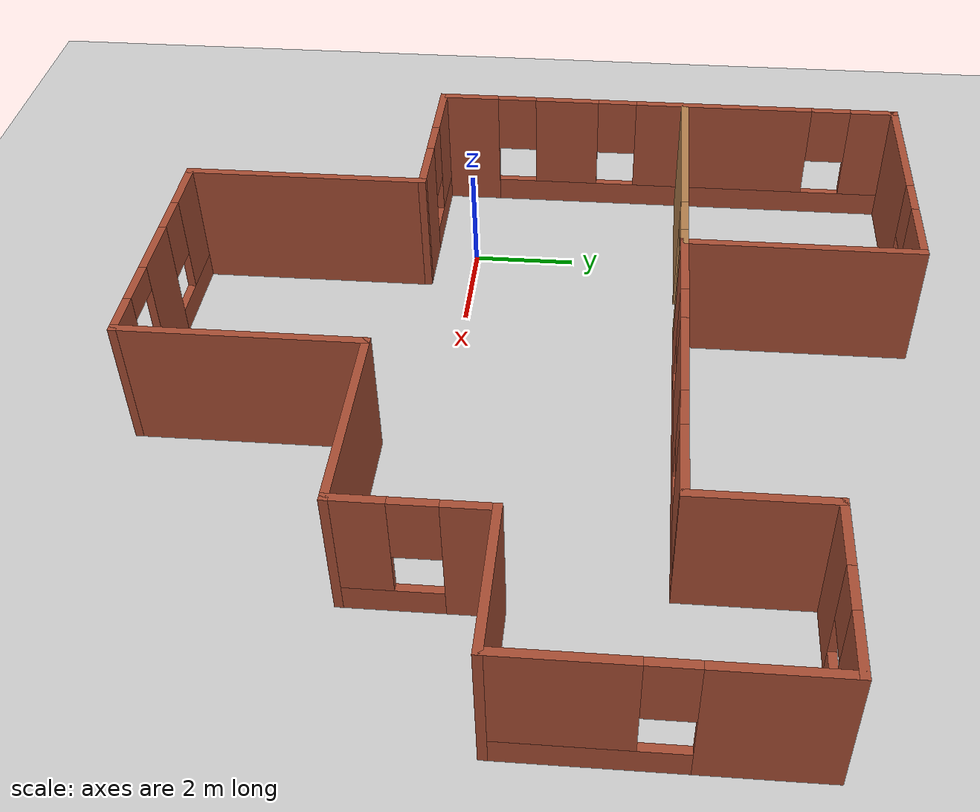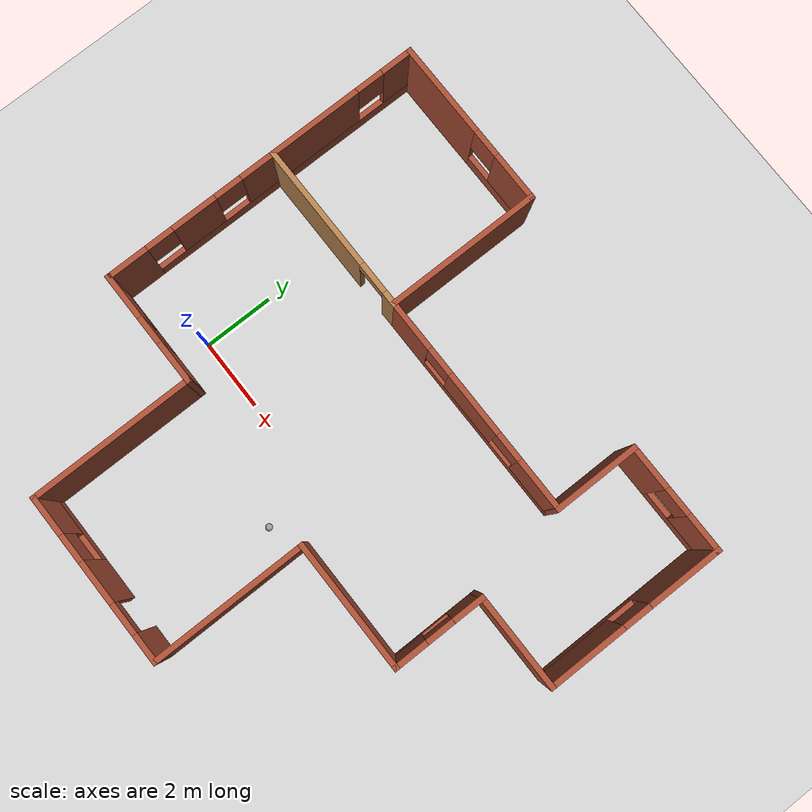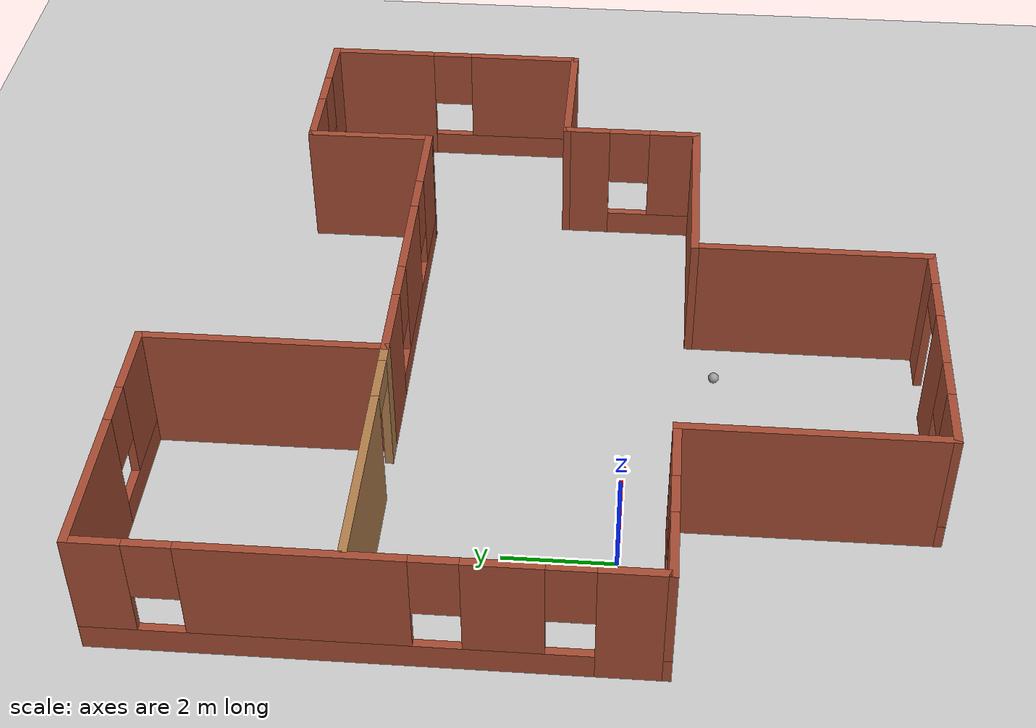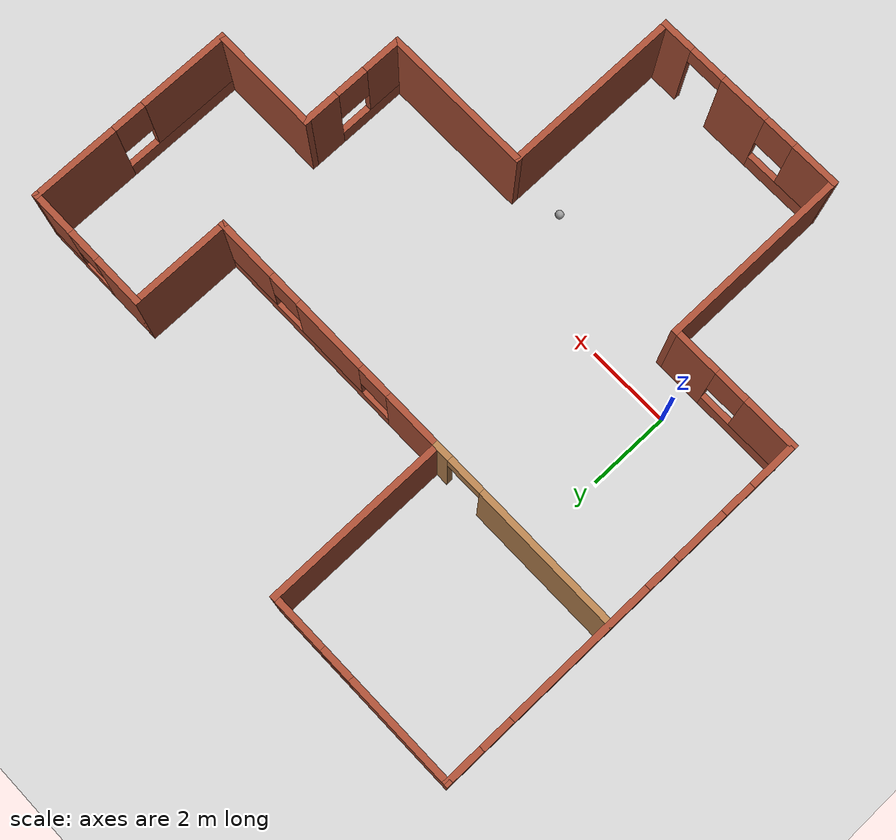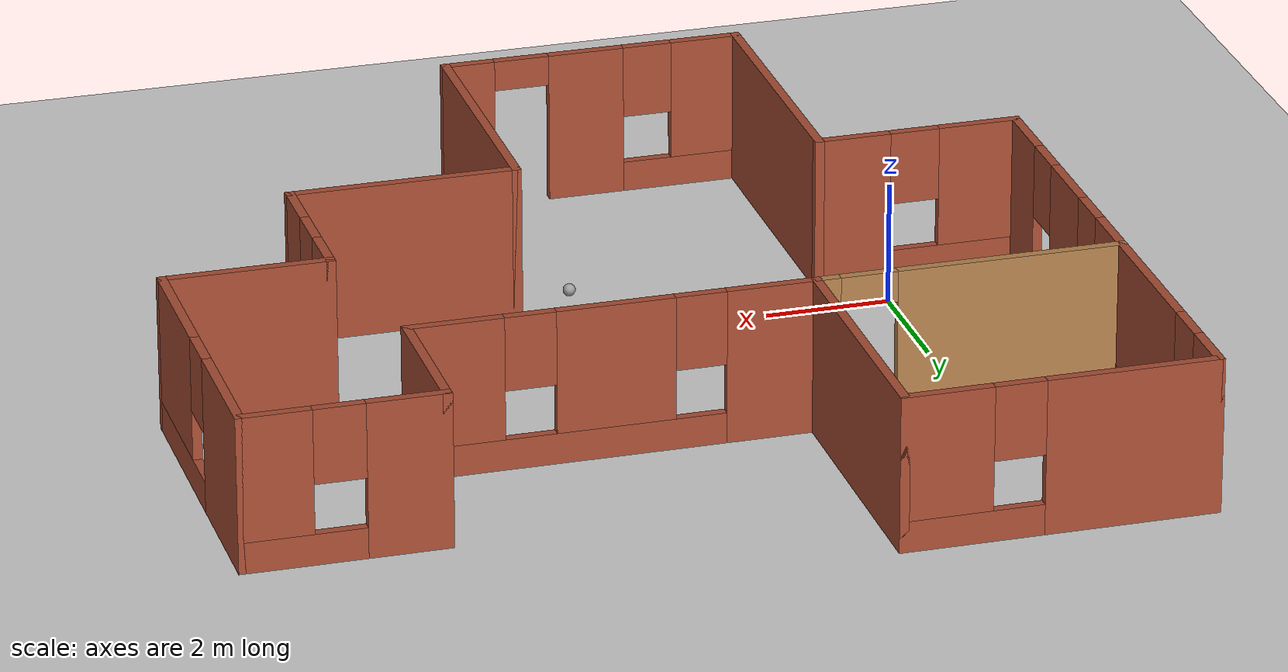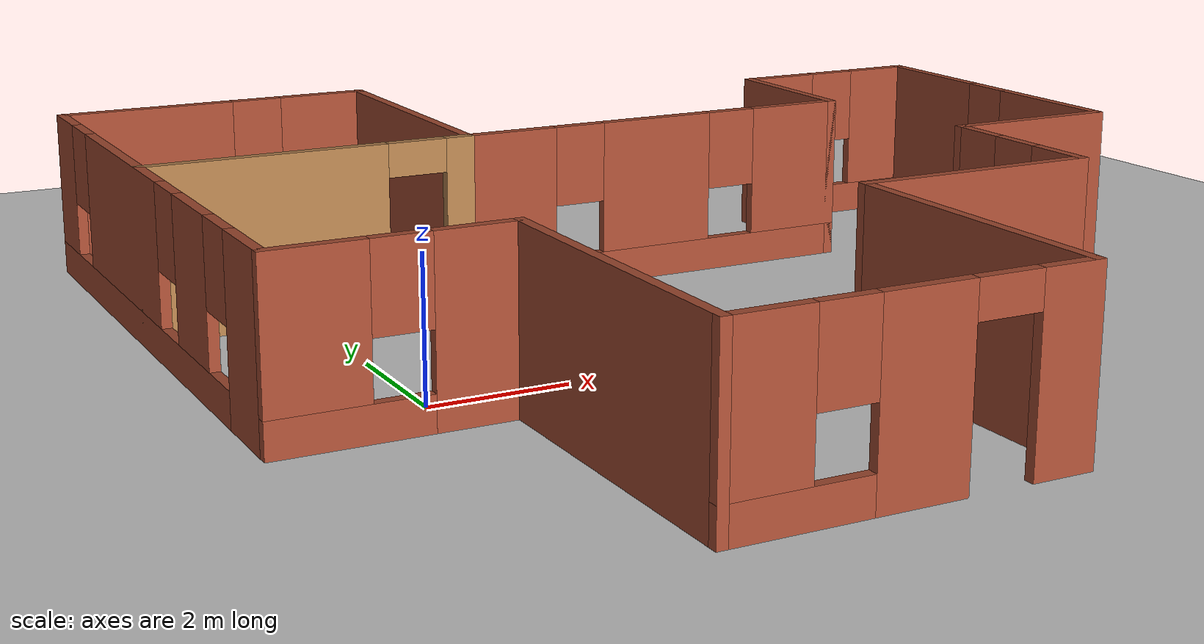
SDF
<sdf version="1.6">
 <world name="default">
  <light name="sun" type="directional">
   <pose>0 0 10 0 -0 0</pose>
   <diffuse>0.8 0.8 0.8 1</diffuse>
   <specular>0.2 0.2 0.2 1</specular>
   <attenuation>
    <range>1000</range>
    <constant>0.9</constant>
    <linear>0.01</linear>
    <quadratic>0.001</quadratic>
   </attenuation>
   <direction>-0.5 0.1 -0.9</direction>
  </light>
  <model name="ground_plane">
   <static>1</static>
   <link name="link">
    <collision name="collision">
     <geometry><plane><normal>0 0 1</normal><size>100 100</size></plane></geometry>
     <surface>
      <contact><collide_bitmask>65535</collide_bitmask></contact>
      <friction><ode><mu>100</mu><mu2>50</mu2></ode></friction>
     </surface>
    </collision>
    <visual name="visual">
     <cast_shadows>0</cast_shadows>
     <geometry><plane><normal>0 0 1</normal><size>100 100</size></plane></geometry>
     <material>
      <script><uri>file://media/materials/scripts/gazebo.material</uri><name>Gazebo/Grey</name></script>
     </material>
    </visual>
   </link>
  </model>
  <gravity>0 0 -9.8</gravity>
  <magnetic_field>6e-06 2.3e-05 -4.2e-05</magnetic_field>
  <atmosphere type="adiabatic"/>
  <physics name="default_physics" default="0" type="ode">
   <max_step_size>0.001</max_step_size>
   <real_time_factor>1</real_time_factor>
   <real_time_update_rate>1000</real_time_update_rate>
  </physics>
  <scene><ambient>0.4 0.4 0.4 1</ambient><background>0.7 0.7 0.7 1</background><shadows>1</shadows></scene>
  <spherical_coordinates>
   <surface_model>EARTH_WGS84</surface_model>
   <latitude_deg>0</latitude_deg>
   <longitude_deg>0</longitude_deg>
   <elevation>0</elevation>
   <heading_deg>0</heading_deg>
  </spherical_coordinates>
  <model name="mybuilding">
   <pose>4.8 1.535 0 0 -0 0</pose>
   <link name="Wall_0">
    <pose>-7.15 2.35 0 0 -0 1.5708</pose>
    <visual name="Wall_0_Visual_0">
     <pose>-4.18163 0 1.25 0 -0 0</pose>
     <geometry><box><size>1.13674 0.15 2.5</size></box></geometry>
     <material>
      <script><uri>file://media/materials/scripts/gazebo.material</uri><name>Gazebo/Bricks</name></script>
      <ambient>1 1 1 1</ambient>
     </material>
     <meta><layer>0</layer></meta>
    </visual>
    <collision name="Wall_0_Collision_0">
     <geometry><box><size>1.13674 0.15 2.5</size></box></geometry>
     <pose>-4.18163 0 1.25 0 -0 0</pose>
    </collision>
    <visual name="Wall_0_Visual_1">
     <pose>0.568369 0 0.25 0 -0 0</pose>
     <geometry><box><size>8.36326 0.15 0.5</size></box></geometry>
     <material>
      <script><uri>file://media/materials/scripts/gazebo.material</uri><name>Gazebo/Bricks</name></script>
      <ambient>1 1 1 1</ambient>
     </material>
     <meta><layer>0</layer></meta>
    </visual>
    <collision name="Wall_0_Collision_1">
     <geometry><box><size>8.36326 0.15 0.5</size></box></geometry>
     <pose>0.568369 0 0.25 0 -0 0</pose>
    </collision>
    <visual name="Wall_0_Visual_2">
     <pose>-2.15262 0 1.5 0 -0 0</pose>
     <geometry><box><size>1.32129 0.15 2</size></box></geometry>
     <material>
      <script><uri>file://media/materials/scripts/gazebo.material</uri><name>Gazebo/Bricks</name></script>
      <ambient>1 1 1 1</ambient>
     </material>
     <meta><layer>0</layer></meta>
    </visual>
    <collision name="Wall_0_Collision_2">
     <geometry><box><size>1.32129 0.15 2</size></box></geometry>
     <pose>-2.15262 0 1.5 0 -0 0</pose>
    </collision>
    <visual name="Wall_0_Visual_3">
     <pose>1.13887 0 1.5 0 -0 0</pose>
     <geometry><box><size>3.66168 0.15 2</size></box></geometry>
     <material>
      <script><uri>file://media/materials/scripts/gazebo.material</uri><name>Gazebo/Bricks</name></script>
      <ambient>1 1 1 1</ambient>
     </material>
     <meta><layer>0</layer></meta>
    </visual>
    <collision name="Wall_0_Collision_3">
     <geometry><box><size>3.66168 0.15 2</size></box></geometry>
     <pose>1.13887 0 1.5 0 -0 0</pose>
    </collision>
    <visual name="Wall_0_Visual_4">
     <pose>4.25985 0 1.5 0 -0 0</pose>
     <geometry><box><size>0.980292 0.15 2</size></box></geometry>
     <material>
      <script><uri>file://media/materials/scripts/gazebo.material</uri><name>Gazebo/Bricks</name></script>
      <ambient>1 1 1 1</ambient>
     </material>
     <meta><layer>0</layer></meta>
    </visual>
    <collision name="Wall_0_Collision_4">
     <geometry><box><size>0.980292 0.15 2</size></box></geometry>
     <pose>4.25985 0 1.5 0 -0 0</pose>
    </collision>
    <visual name="Wall_0_Visual_5">
     <pose>-3.21326 0 1.9 0 -0 0</pose>
     <geometry><box><size>0.8 0.15 1.2</size></box></geometry>
     <material>
      <script><uri>file://media/materials/scripts/gazebo.material</uri><name>Gazebo/Bricks</name></script>
      <ambient>1 1 1 1</ambient>
     </material>
     <meta><layer>0</layer></meta>
    </visual>
    <collision name="Wall_0_Collision_5">
     <geometry><box><size>0.8 0.15 1.2</size></box></geometry>
     <pose>-3.21326 0 1.9 0 -0 0</pose>
    </collision>
    <visual name="Wall_0_Visual_6">
     <pose>-1.09197 0 1.9 0 -0 0</pose>
     <geometry><box><size>0.8 0.15 1.2</size></box></geometry>
     <material>
      <script><uri>file://media/materials/scripts/gazebo.material</uri><name>Gazebo/Bricks</name></script>
      <ambient>1 1 1 1</ambient>
     </material>
     <meta><layer>0</layer></meta>
    </visual>
    <collision name="Wall_0_Collision_6">
     <geometry><box><size>0.8 0.15 1.2</size></box></geometry>
     <pose>-1.09197 0 1.9 0 -0 0</pose>
    </collision>
    <visual name="Wall_0_Visual_7">
     <pose>3.36971 0 1.9 0 -0 0</pose>
     <geometry><box><size>0.8 0.15 1.2</size></box></geometry>
     <material>
      <script><uri>file://media/materials/scripts/gazebo.material</uri><name>Gazebo/Bricks</name></script>
      <ambient>1 1 1 1</ambient>
     </material>
     <meta><layer>0</layer></meta>
    </visual>
    <collision name="Wall_0_Collision_7">
     <geometry><box><size>0.8 0.15 1.2</size></box></geometry>
     <pose>3.36971 0 1.9 0 -0 0</pose>
    </collision>
   </link>
   <link name="Wall_1">
    <pose>-4.725 7.025 0 0 -0 0</pose>
    <visual name="Wall_1_Visual_0">
     <pose>-1.12305 0 1.25 0 -0 0</pose>
     <geometry><box><size>2.7539 0.15 2.5</size></box></geometry>
     <material>
      <script><uri>file://media/materials/scripts/gazebo.material</uri><name>Gazebo/Bricks</name></script>
      <ambient>1 1 1 1</ambient>
     </material>
     <meta><layer>0</layer></meta>
    </visual>
    <collision name="Wall_1_Collision_0">
     <geometry><box><size>2.7539 0.15 2.5</size></box></geometry>
     <pose>-1.12305 0 1.25 0 -0 0</pose>
    </collision>
    <visual name="Wall_1_Visual_1">
     <pose>1.37695 0 0.25 0 -0 0</pose>
     <geometry><box><size>2.2461 0.15 0.5</size></box></geometry>
     <material>
      <script><uri>file://media/materials/scripts/gazebo.material</uri><name>Gazebo/Bricks</name></script>
      <ambient>1 1 1 1</ambient>
     </material>
     <meta><layer>0</layer></meta>
    </visual>
    <collision name="Wall_1_Collision_1">
     <geometry><box><size>2.2461 0.15 0.5</size></box></geometry>
     <pose>1.37695 0 0.25 0 -0 0</pose>
    </collision>
    <visual name="Wall_1_Visual_2">
     <pose>1.77695 0 1.5 0 -0 0</pose>
     <geometry><box><size>1.4461 0.15 2</size></box></geometry>
     <material>
      <script><uri>file://media/materials/scripts/gazebo.material</uri><name>Gazebo/Bricks</name></script>
      <ambient>1 1 1 1</ambient>
     </material>
     <meta><layer>0</layer></meta>
    </visual>
    <collision name="Wall_1_Collision_2">
     <geometry><box><size>1.4461 0.15 2</size></box></geometry>
     <pose>1.77695 0 1.5 0 -0 0</pose>
    </collision>
    <visual name="Wall_1_Visual_3">
     <pose>0.653902 0 1.9 0 -0 0</pose>
     <geometry><box><size>0.8 0.15 1.2</size></box></geometry>
     <material>
      <script><uri>file://media/materials/scripts/gazebo.material</uri><name>Gazebo/Bricks</name></script>
      <ambient>1 1 1 1</ambient>
     </material>
     <meta><layer>0</layer></meta>
    </visual>
    <collision name="Wall_1_Collision_3">
     <geometry><box><size>0.8 0.15 1.2</size></box></geometry>
     <pose>0.653902 0 1.9 0 -0 0</pose>
    </collision>
   </link>
   <link name="Wall_10">
    <collision name="Wall_10_Collision">
     <geometry><box><size>3.75 0.15 2.5</size></box></geometry>
     <pose>0 0 1.25 0 -0 0</pose>
    </collision>
    <visual name="Wall_10_Visual">
     <pose>0 0 1.25 0 -0 0</pose>
     <geometry><box><size>3.75 0.15 2.5</size></box></geometry>
     <material>
      <script><uri>file://media/materials/scripts/gazebo.material</uri><name>Gazebo/Bricks</name></script>
      <ambient>1 1 1 1</ambient>
     </material>
     <meta><layer>0</layer></meta>
    </visual>
    <pose>2.75 -2.675 0 0 -0 3.14159</pose>
   </link>
   <link name="Wall_11">
    <collision name="Wall_11_Collision">
     <geometry><box><size>4.5 0.15 2.5</size></box></geometry>
     <pose>0 0 1.25 0 -0 0</pose>
    </collision>
    <visual name="Wall_11_Visual">
     <pose>0 0 1.25 0 -0 0</pose>
     <geometry><box><size>4.5 0.15 2.5</size></box></geometry>
     <material>
      <script><uri>file://media/materials/scripts/gazebo.material</uri><name>Gazebo/Bricks</name></script>
      <ambient>1 1 1 1</ambient>
     </material>
     <meta><layer>0</layer></meta>
    </visual>
    <pose>0.95 -4.85 0 0 0 -1.5708</pose>
   </link>
   <link name="Wall_12">
    <pose>-1.475 -7.025 0 0 -0 3.14159</pose>
    <visual name="Wall_12_Visual_0">
     <pose>-2.06622 0 1.25 0 -0 0</pose>
     <geometry><box><size>0.867555 0.15 2.5</size></box></geometry>
     <material>
      <script><uri>file://media/materials/scripts/gazebo.material</uri><name>Gazebo/Bricks</name></script>
      <ambient>1 1 1 1</ambient>
     </material>
     <meta><layer>0</layer></meta>
    </visual>
    <collision name="Wall_12_Collision_0">
     <geometry><box><size>0.867555 0.15 2.5</size></box></geometry>
     <pose>-2.06622 0 1.25 0 -0 0</pose>
    </collision>
    <visual name="Wall_12_Visual_1">
     <pose>-0.109031 0 1.25 0 -0 0</pose>
     <geometry><box><size>1.24683 0.15 2.5</size></box></geometry>
     <material>
      <script><uri>file://media/materials/scripts/gazebo.material</uri><name>Gazebo/Bricks</name></script>
      <ambient>1 1 1 1</ambient>
     </material>
     <meta><layer>0</layer></meta>
    </visual>
    <collision name="Wall_12_Collision_1">
     <geometry><box><size>1.24683 0.15 2.5</size></box></geometry>
     <pose>-0.109031 0 1.25 0 -0 0</pose>
    </collision>
    <visual name="Wall_12_Visual_2">
     <pose>1.50719 0 0.25 0 -0 0</pose>
     <geometry><box><size>1.98562 0.15 0.5</size></box></geometry>
     <material>
      <script><uri>file://media/materials/scripts/gazebo.material</uri><name>Gazebo/Bricks</name></script>
      <ambient>1 1 1 1</ambient>
     </material>
     <meta><layer>0</layer></meta>
    </visual>
    <collision name="Wall_12_Collision_2">
     <geometry><box><size>1.98562 0.15 0.5</size></box></geometry>
     <pose>1.50719 0 0.25 0 -0 0</pose>
    </collision>
    <visual name="Wall_12_Visual_3">
     <pose>1.90719 0 1.5 0 -0 0</pose>
     <geometry><box><size>1.18562 0.15 2</size></box></geometry>
     <material>
      <script><uri>file://media/materials/scripts/gazebo.material</uri><name>Gazebo/Bricks</name></script>
      <ambient>1 1 1 1</ambient>
     </material>
     <meta><layer>0</layer></meta>
    </visual>
    <collision name="Wall_12_Collision_3">
     <geometry><box><size>1.18562 0.15 2</size></box></geometry>
     <pose>1.90719 0 1.5 0 -0 0</pose>
    </collision>
    <visual name="Wall_12_Visual_4">
     <pose>0.914384 0 1.9 0 -0 0</pose>
     <geometry><box><size>0.8 0.15 1.2</size></box></geometry>
     <material>
      <script><uri>file://media/materials/scripts/gazebo.material</uri><name>Gazebo/Bricks</name></script>
      <ambient>1 1 1 1</ambient>
     </material>
     <meta><layer>0</layer></meta>
    </visual>
    <collision name="Wall_12_Collision_4">
     <geometry><box><size>0.8 0.15 1.2</size></box></geometry>
     <pose>0.914384 0 1.9 0 -0 0</pose>
    </collision>
    <visual name="Wall_12_Visual_5">
     <pose>-1.18244 0 2.25 0 -0 0</pose>
     <geometry><box><size>0.9 0.15 0.5</size></box></geometry>
     <material>
      <script><uri>file://media/materials/scripts/gazebo.material</uri><name>Gazebo/Bricks</name></script>
      <ambient>1 1 1 1</ambient>
     </material>
     <meta><layer>0</layer></meta>
    </visual>
    <collision name="Wall_12_Collision_5">
     <geometry><box><size>0.9 0.15 0.5</size></box></geometry>
     <pose>-1.18244 0 2.25 0 -0 0</pose>
    </collision>
   </link>
   <link name="Wall_13">
    <collision name="Wall_13_Collision">
     <geometry><box><size>4.75 0.15 2.5</size></box></geometry>
     <pose>0 0 1.25 0 -0 0</pose>
    </collision>
    <visual name="Wall_13_Visual">
     <pose>0 0 1.25 0 -0 0</pose>
     <geometry><box><size>4.75 0.15 2.5</size></box></geometry>
     <material>
      <script><uri>file://media/materials/scripts/gazebo.material</uri><name>Gazebo/Bricks</name></script>
      <ambient>1 1 1 1</ambient>
     </material>
     <meta><layer>0</layer></meta>
    </visual>
    <pose>-3.9 -4.725 0 0 -0 1.5708</pose>
   </link>
   <link name="Wall_14">
    <pose>-5.525 -2.425 0 0 -0 3.14159</pose>
    <visual name="Wall_14_Visual_0">
     <pose>-1.07987 0 1.25 0 -0 0</pose>
     <geometry><box><size>1.24025 0.15 2.5</size></box></geometry>
     <material>
      <script><uri>file://media/materials/scripts/gazebo.material</uri><name>Gazebo/Bricks</name></script>
      <ambient>1 1 1 1</ambient>
     </material>
     <meta><layer>0</layer></meta>
    </visual>
    <collision name="Wall_14_Collision_0">
     <geometry><box><size>1.24025 0.15 2.5</size></box></geometry>
     <pose>-1.07987 0 1.25 0 -0 0</pose>
    </collision>
    <visual name="Wall_14_Visual_1">
     <pose>0.620125 0 0.25 0 -0 0</pose>
     <geometry><box><size>2.15975 0.15 0.5</size></box></geometry>
     <material>
      <script><uri>file://media/materials/scripts/gazebo.material</uri><name>Gazebo/Bricks</name></script>
      <ambient>1 1 1 1</ambient>
     </material>
     <meta><layer>0</layer></meta>
    </visual>
    <collision name="Wall_14_Collision_1">
     <geometry><box><size>2.15975 0.15 0.5</size></box></geometry>
     <pose>0.620125 0 0.25 0 -0 0</pose>
    </collision>
    <visual name="Wall_14_Visual_2">
     <pose>1.02012 0 1.5 0 -0 0</pose>
     <geometry><box><size>1.35975 0.15 2</size></box></geometry>
     <material>
      <script><uri>file://media/materials/scripts/gazebo.material</uri><name>Gazebo/Bricks</name></script>
      <ambient>1 1 1 1</ambient>
     </material>
     <meta><layer>0</layer></meta>
    </visual>
    <collision name="Wall_14_Collision_2">
     <geometry><box><size>1.35975 0.15 2</size></box></geometry>
     <pose>1.02012 0 1.5 0 -0 0</pose>
    </collision>
    <visual name="Wall_14_Visual_3">
     <pose>-0.05975 0 1.9 0 -0 0</pose>
     <geometry><box><size>0.8 0.15 1.2</size></box></geometry>
     <material>
      <script><uri>file://media/materials/scripts/gazebo.material</uri><name>Gazebo/Bricks</name></script>
      <ambient>1 1 1 1</ambient>
     </material>
     <meta><layer>0</layer></meta>
    </visual>
    <collision name="Wall_14_Collision_3">
     <geometry><box><size>0.8 0.15 1.2</size></box></geometry>
     <pose>-0.05975 0 1.9 0 -0 0</pose>
    </collision>
   </link>
   <link name="Wall_16">
    <pose>-4.725 2.675 0 0 -0 3.14159</pose>
    <visual name="Wall_16_Visual_0">
     <pose>-2.27924 0 1.25 0 -0 0</pose>
     <geometry><box><size>0.441519 0.15 2.5</size></box></geometry>
     <material>
      <script><uri>file://media/materials/scripts/gazebo.material</uri><name>Gazebo/Wood</name></script>
      <ambient>1 1 1 1</ambient>
     </material>
     <meta><layer>0</layer></meta>
    </visual>
    <collision name="Wall_16_Collision_0">
     <geometry><box><size>0.441519 0.15 2.5</size></box></geometry>
     <pose>-2.27924 0 1.25 0 -0 0</pose>
    </collision>
    <visual name="Wall_16_Visual_1">
     <pose>0.67076 0 1.25 0 -0 0</pose>
     <geometry><box><size>3.65848 0.15 2.5</size></box></geometry>
     <material>
      <script><uri>file://media/materials/scripts/gazebo.material</uri><name>Gazebo/Wood</name></script>
      <ambient>1 1 1 1</ambient>
     </material>
     <meta><layer>0</layer></meta>
    </visual>
    <collision name="Wall_16_Collision_1">
     <geometry><box><size>3.65848 0.15 2.5</size></box></geometry>
     <pose>0.67076 0 1.25 0 -0 0</pose>
    </collision>
    <visual name="Wall_16_Visual_2">
     <pose>-1.60848 0 2.25 0 -0 0</pose>
     <geometry><box><size>0.9 0.15 0.5</size></box></geometry>
     <material>
      <script><uri>file://media/materials/scripts/gazebo.material</uri><name>Gazebo/Wood</name></script>
      <ambient>1 1 1 1</ambient>
     </material>
     <meta><layer>0</layer></meta>
    </visual>
    <collision name="Wall_16_Collision_2">
     <geometry><box><size>0.9 0.15 0.5</size></box></geometry>
     <pose>-1.60848 0 2.25 0 -0 0</pose>
    </collision>
   </link>
   <link name="Wall_2">
    <collision name="Wall_2_Collision">
     <geometry><box><size>4.5 0.15 2.5</size></box></geometry>
     <pose>0 0 1.25 0 -0 0</pose>
    </collision>
    <visual name="Wall_2_Visual">
     <pose>0 0 1.25 0 -0 0</pose>
     <geometry><box><size>4.5 0.15 2.5</size></box></geometry>
     <material>
      <script><uri>file://media/materials/scripts/gazebo.material</uri><name>Gazebo/Bricks</name></script>
      <ambient>1 1 1 1</ambient>
     </material>
     <meta><layer>0</layer></meta>
    </visual>
    <pose>-2.3 4.85 0 0 0 -1.5708</pose>
   </link>
   <link name="Wall_3">
    <pose>0.875 2.675 0 0 -0 0</pose>
    <visual name="Wall_3_Visual_0">
     <pose>-2.50261 0 1.25 0 -0 0</pose>
     <geometry><box><size>1.49477 0.15 2.5</size></box></geometry>
     <material>
      <script><uri>file://media/materials/scripts/gazebo.material</uri><name>Gazebo/Bricks</name></script>
      <ambient>1 1 1 1</ambient>
     </material>
     <meta><layer>0</layer></meta>
    </visual>
    <collision name="Wall_3_Collision_0">
     <geometry><box><size>1.49477 0.15 2.5</size></box></geometry>
     <pose>-2.50261 0 1.25 0 -0 0</pose>
    </collision>
    <visual name="Wall_3_Visual_1">
     <pose>0.747387 0 0.25 0 -0 0</pose>
     <geometry><box><size>5.00523 0.15 0.5</size></box></geometry>
     <material>
      <script><uri>file://media/materials/scripts/gazebo.material</uri><name>Gazebo/Bricks</name></script>
      <ambient>1 1 1 1</ambient>
     </material>
     <meta><layer>0</layer></meta>
    </visual>
    <collision name="Wall_3_Collision_1">
     <geometry><box><size>5.00523 0.15 0.5</size></box></geometry>
     <pose>0.747387 0 0.25 0 -0 0</pose>
    </collision>
    <visual name="Wall_3_Visual_2">
     <pose>-0.029421 0 1.5 0 -0 0</pose>
     <geometry><box><size>1.85161 0.15 2</size></box></geometry>
     <material>
      <script><uri>file://media/materials/scripts/gazebo.material</uri><name>Gazebo/Bricks</name></script>
      <ambient>1 1 1 1</ambient>
     </material>
     <meta><layer>0</layer></meta>
    </visual>
    <collision name="Wall_3_Collision_2">
     <geometry><box><size>1.85161 0.15 2</size></box></geometry>
     <pose>-0.029421 0 1.5 0 -0 0</pose>
    </collision>
    <visual name="Wall_3_Visual_3">
     <pose>2.47319 0 1.5 0 -0 0</pose>
     <geometry><box><size>1.55362 0.15 2</size></box></geometry>
     <material>
      <script><uri>file://media/materials/scripts/gazebo.material</uri><name>Gazebo/Bricks</name></script>
      <ambient>1 1 1 1</ambient>
     </material>
     <meta><layer>0</layer></meta>
    </visual>
    <collision name="Wall_3_Collision_3">
     <geometry><box><size>1.55362 0.15 2</size></box></geometry>
     <pose>2.47319 0 1.5 0 -0 0</pose>
    </collision>
    <visual name="Wall_3_Visual_4">
     <pose>-1.35522 0 1.9 0 -0 0</pose>
     <geometry><box><size>0.8 0.15 1.2</size></box></geometry>
     <material>
      <script><uri>file://media/materials/scripts/gazebo.material</uri><name>Gazebo/Bricks</name></script>
      <ambient>1 1 1 1</ambient>
     </material>
     <meta><layer>0</layer></meta>
    </visual>
    <collision name="Wall_3_Collision_4">
     <geometry><box><size>0.8 0.15 1.2</size></box></geometry>
     <pose>-1.35522 0 1.9 0 -0 0</pose>
    </collision>
    <visual name="Wall_3_Visual_5">
     <pose>1.29638 0 1.9 0 -0 0</pose>
     <geometry><box><size>0.8 0.15 1.2</size></box></geometry>
     <material>
      <script><uri>file://media/materials/scripts/gazebo.material</uri><name>Gazebo/Bricks</name></script>
      <ambient>1 1 1 1</ambient>
     </material>
     <meta><layer>0</layer></meta>
    </visual>
    <collision name="Wall_3_Collision_5">
     <geometry><box><size>0.8 0.15 1.2</size></box></geometry>
     <pose>1.29638 0 1.9 0 -0 0</pose>
    </collision>
   </link>
   <link name="Wall_4">
    <collision name="Wall_4_Collision">
     <geometry><box><size>2.5 0.15 2.5</size></box></geometry>
     <pose>0 0 1.25 0 -0 0</pose>
    </collision>
    <visual name="Wall_4_Visual">
     <pose>0 0 1.25 0 -0 0</pose>
     <geometry><box><size>2.5 0.15 2.5</size></box></geometry>
     <material>
      <script><uri>file://media/materials/scripts/gazebo.material</uri><name>Gazebo/Bricks</name></script>
      <ambient>1 1 1 1</ambient>
     </material>
     <meta><layer>0</layer></meta>
    </visual>
    <pose>4.05 3.85 0 0 -0 1.5708</pose>
   </link>
   <link name="Wall_5">
    <pose>5.6 5.025 0 0 -0 0</pose>
    <visual name="Wall_5_Visual_0">
     <pose>-0.976746 0 1.25 0 -0 0</pose>
     <geometry><box><size>1.29651 0.15 2.5</size></box></geometry>
     <material>
      <script><uri>file://media/materials/scripts/gazebo.material</uri><name>Gazebo/Bricks</name></script>
      <ambient>1 1 1 1</ambient>
     </material>
     <meta><layer>0</layer></meta>
    </visual>
    <collision name="Wall_5_Collision_0">
     <geometry><box><size>1.29651 0.15 2.5</size></box></geometry>
     <pose>-0.976746 0 1.25 0 -0 0</pose>
    </collision>
    <visual name="Wall_5_Visual_1">
     <pose>0.648254 0 0.25 0 -0 0</pose>
     <geometry><box><size>1.95349 0.15 0.5</size></box></geometry>
     <material>
      <script><uri>file://media/materials/scripts/gazebo.material</uri><name>Gazebo/Bricks</name></script>
      <ambient>1 1 1 1</ambient>
     </material>
     <meta><layer>0</layer></meta>
    </visual>
    <collision name="Wall_5_Collision_1">
     <geometry><box><size>1.95349 0.15 0.5</size></box></geometry>
     <pose>0.648254 0 0.25 0 -0 0</pose>
    </collision>
    <visual name="Wall_5_Visual_2">
     <pose>1.04825 0 1.5 0 -0 0</pose>
     <geometry><box><size>1.15349 0.15 2</size></box></geometry>
     <material>
      <script><uri>file://media/materials/scripts/gazebo.material</uri><name>Gazebo/Bricks</name></script>
      <ambient>1 1 1 1</ambient>
     </material>
     <meta><layer>0</layer></meta>
    </visual>
    <collision name="Wall_5_Collision_2">
     <geometry><box><size>1.15349 0.15 2</size></box></geometry>
     <pose>1.04825 0 1.5 0 -0 0</pose>
    </collision>
    <visual name="Wall_5_Visual_3">
     <pose>0.071508 0 1.9 0 -0 0</pose>
     <geometry><box><size>0.8 0.15 1.2</size></box></geometry>
     <material>
      <script><uri>file://media/materials/scripts/gazebo.material</uri><name>Gazebo/Bricks</name></script>
      <ambient>1 1 1 1</ambient>
     </material>
     <meta><layer>0</layer></meta>
    </visual>
    <collision name="Wall_5_Collision_3">
     <geometry><box><size>0.8 0.15 1.2</size></box></geometry>
     <pose>0.071508 0 1.9 0 -0 0</pose>
    </collision>
   </link>
   <link name="Wall_6">
    <pose>7.15 2.475 0 0 0 -1.5708</pose>
    <visual name="Wall_6_Visual_0">
     <pose>-1.5404 0 1.25 0 -0 0</pose>
     <geometry><box><size>2.1692 0.15 2.5</size></box></geometry>
     <material>
      <script><uri>file://media/materials/scripts/gazebo.material</uri><name>Gazebo/Bricks</name></script>
      <ambient>1 1 1 1</ambient>
     </material>
     <meta><layer>0</layer></meta>
    </visual>
    <collision name="Wall_6_Collision_0">
     <geometry><box><size>2.1692 0.15 2.5</size></box></geometry>
     <pose>-1.5404 0 1.25 0 -0 0</pose>
    </collision>
    <visual name="Wall_6_Visual_1">
     <pose>1.0846 0 0.25 0 -0 0</pose>
     <geometry><box><size>3.0808 0.15 0.5</size></box></geometry>
     <material>
      <script><uri>file://media/materials/scripts/gazebo.material</uri><name>Gazebo/Bricks</name></script>
      <ambient>1 1 1 1</ambient>
     </material>
     <meta><layer>0</layer></meta>
    </visual>
    <collision name="Wall_6_Collision_1">
     <geometry><box><size>3.0808 0.15 0.5</size></box></geometry>
     <pose>1.0846 0 0.25 0 -0 0</pose>
    </collision>
    <visual name="Wall_6_Visual_2">
     <pose>1.4846 0 1.5 0 -0 0</pose>
     <geometry><box><size>2.2808 0.15 2</size></box></geometry>
     <material>
      <script><uri>file://media/materials/scripts/gazebo.material</uri><name>Gazebo/Bricks</name></script>
      <ambient>1 1 1 1</ambient>
     </material>
     <meta><layer>0</layer></meta>
    </visual>
    <collision name="Wall_6_Collision_2">
     <geometry><box><size>2.2808 0.15 2</size></box></geometry>
     <pose>1.4846 0 1.5 0 -0 0</pose>
    </collision>
    <visual name="Wall_6_Visual_3">
     <pose>-0.055797 0 1.9 0 -0 0</pose>
     <geometry><box><size>0.8 0.15 1.2</size></box></geometry>
     <material>
      <script><uri>file://media/materials/scripts/gazebo.material</uri><name>Gazebo/Bricks</name></script>
      <ambient>1 1 1 1</ambient>
     </material>
     <meta><layer>0</layer></meta>
    </visual>
    <collision name="Wall_6_Collision_3">
     <geometry><box><size>0.8 0.15 1.2</size></box></geometry>
     <pose>-0.055797 0 1.9 0 -0 0</pose>
    </collision>
   </link>
   <link name="Wall_8">
    <collision name="Wall_8_Collision">
     <geometry><box><size>2.75 0.15 2.5</size></box></geometry>
     <pose>0 0 1.25 0 -0 0</pose>
    </collision>
    <visual name="Wall_8_Visual">
     <pose>0 0 1.25 0 -0 0</pose>
     <geometry><box><size>2.75 0.15 2.5</size></box></geometry>
     <material>
      <script><uri>file://media/materials/scripts/gazebo.material</uri><name>Gazebo/Bricks</name></script>
      <ambient>1 1 1 1</ambient>
     </material>
     <meta><layer>0</layer></meta>
    </visual>
    <pose>5.85 -0.075 0 0 -0 3.14159</pose>
   </link>
   <link name="Wall_9">
    <pose>4.55 -1.375 0 0 0 -1.5708</pose>
    <visual name="Wall_9_Visual_0">
     <pose>-0.904724 0 1.25 0 -0 0</pose>
     <geometry><box><size>0.940552 0.15 2.5</size></box></geometry>
     <material>
      <script><uri>file://media/materials/scripts/gazebo.material</uri><name>Gazebo/Bricks</name></script>
      <ambient>1 1 1 1</ambient>
     </material>
     <meta><layer>0</layer></meta>
    </visual>
    <collision name="Wall_9_Collision_0">
     <geometry><box><size>0.940552 0.15 2.5</size></box></geometry>
     <pose>-0.904724 0 1.25 0 -0 0</pose>
    </collision>
    <visual name="Wall_9_Visual_1">
     <pose>0.470276 0 0.25 0 -0 0</pose>
     <geometry><box><size>1.80945 0.15 0.5</size></box></geometry>
     <material>
      <script><uri>file://media/materials/scripts/gazebo.material</uri><name>Gazebo/Bricks</name></script>
      <ambient>1 1 1 1</ambient>
     </material>
     <meta><layer>0</layer></meta>
    </visual>
    <collision name="Wall_9_Collision_1">
     <geometry><box><size>1.80945 0.15 0.5</size></box></geometry>
     <pose>0.470276 0 0.25 0 -0 0</pose>
    </collision>
    <visual name="Wall_9_Visual_2">
     <pose>0.870276 0 1.5 0 -0 0</pose>
     <geometry><box><size>1.00945 0.15 2</size></box></geometry>
     <material>
      <script><uri>file://media/materials/scripts/gazebo.material</uri><name>Gazebo/Bricks</name></script>
      <ambient>1 1 1 1</ambient>
     </material>
     <meta><layer>0</layer></meta>
    </visual>
    <collision name="Wall_9_Collision_2">
     <geometry><box><size>1.00945 0.15 2</size></box></geometry>
     <pose>0.870276 0 1.5 0 -0 0</pose>
    </collision>
    <visual name="Wall_9_Visual_3">
     <pose>-0.034448 0 1.9 0 -0 0</pose>
     <geometry><box><size>0.8 0.15 1.2</size></box></geometry>
     <material>
      <script><uri>file://media/materials/scripts/gazebo.material</uri><name>Gazebo/Bricks</name></script>
      <ambient>1 1 1 1</ambient>
     </material>
     <meta><layer>0</layer></meta>
    </visual>
    <collision name="Wall_9_Collision_3">
     <geometry><box><size>0.8 0.15 1.2</size></box></geometry>
     <pose>-0.034448 0 1.9 0 -0 0</pose>
    </collision>
   </link>
   <static>1</static>
  </model>
  <model name="myball">
   <link name="link_0">
    <inertial>
     <mass>1</mass>
     <inertia><ixx>0.1</ixx><ixy>0</ixy><ixz>0</ixz><iyy>0.1</iyy><iyz>0</iyz><izz>0.1</izz></inertia>
     <pose>0 0 0.1 0 -0 0</pose>
    </inertial>
    <visual name="visual">
     <geometry><sphere><radius>0.1</radius></sphere></geometry>
     <material>
      <lighting>1</lighting>
      <script><uri>file://media/materials/scripts/gazebo.material</uri><name>Gazebo/Grey</name></script>
      <ambient>1 1 1 1</ambient>
      <diffuse>1 1 1 1</diffuse>
      <specular>1 1 1 1</specular>
      <emissive>1 1 1 1</emissive>
      <shader type="vertex"><normal_map>__default__</normal_map></shader>
     </material>
    </visual>
    <collision name="collision">
     <geometry><sphere><radius>0.1</radius></sphere></geometry>
     <surface>
      <friction>
       <ode><mu>1</mu><mu2>1</mu2><fdir1>0 0 0</fdir1><slip1>0</slip1><slip2>0</slip2></ode>
       <torsional>
        <coefficient>1</coefficient>
        <patch_radius>0</patch_radius>
        <surface_radius>0</surface_radius>
        <use_patch_radius>1</use_patch_radius>
        <ode><slip>0</slip></ode>
       </torsional>
      </friction>
      <bounce><restitution_coefficient>0</restitution_coefficient><threshold>1e+06</threshold></bounce>
      <contact>
       <collide_without_contact>0</collide_without_contact>
       <collide_without_contact_bitmask>1</collide_without_contact_bitmask>
       <collide_bitmask>1</collide_bitmask>
       <ode>
        <soft_cfm>0</soft_cfm>
        <soft_erp>0.2</soft_erp>
        <kp>1e+13</kp>
        <kd>1</kd>
        <max_vel>0.01</max_vel>
        <min_depth>0</min_depth>
       </ode>
       <bullet>
        <split_impulse>1</split_impulse>
        <split_impulse_penetration_threshold>-0.01</split_impulse_penetration_threshold>
        <soft_cfm>0</soft_cfm>
        <soft_erp>0.2</soft_erp>
        <kp>1e+13</kp>
        <kd>1</kd>
       </bullet>
      </contact>
     </surface>
    </collision>
   </link>
   <static>0</static>
   <pose>4.76825 -1.63079 0.1 0 -0 0</pose>
  </model>
 </world>
</sdf>
